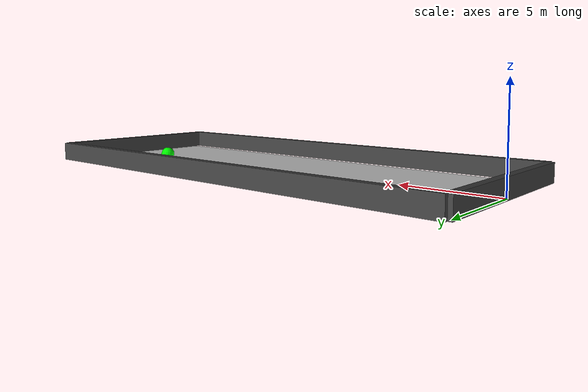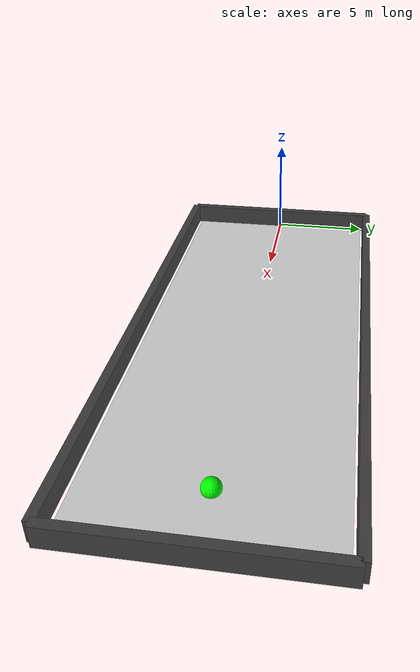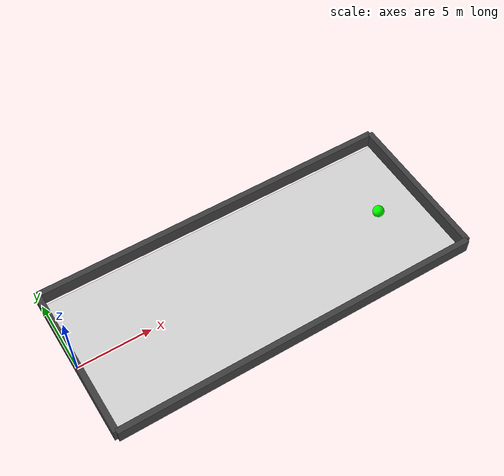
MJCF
<mujoco model="Empty_Corridor_25m">
    <option timestep="0.01" gravity="0 0 -9.81"/>

    <visual>
        <headlight diffuse="0.7 0.7 0.7" ambient="0.3 0.3 0.3"/>
        <global azimuth="135" elevation="-28"/>
    </visual>

    <worldbody>
        <!-- Sàn nhà -->
        <geom name="floor"
              type="plane"
              pos="12.5 0 0"
              size="12.5 5 0.1"
              rgba="0.85 0.85 0.85 1"/>

        <!-- Tường trên -->
        <geom type="box"
              pos="12.5 5.3 0.5"
              size="12.5 0.2 0.5"
              rgba="0.25 0.25 0.25 1"/>

        <!-- Tường dưới -->
        <geom type="box"
              pos="12.5 -5.3 0.5"
              size="12.5 0.2 0.5"
              rgba="0.25 0.25 0.25 1"/>

        <!-- Tường chắn đầu (Start) -->
        <geom type="box"
              pos="0 0 0.5"
              size="0.2 5.3 0.5"
              rgba="0.25 0.25 0.25 1"/>

        <!-- Tường chắn cuối -->
        <geom type="box"
              pos="25 0 0.5"
              size="0.2 5.3 0.5"
              rgba="0.25 0.25 0.25 1"/>

        <!-- Điểm mục tiêu -->
        <body name="goal" pos="22 0 0.1" mocap="true">
            <site name="goal_site" type="sphere" size="0.4" rgba="0 1 0 0.9"/>
        </body>
    </worldbody>

</mujoco>
